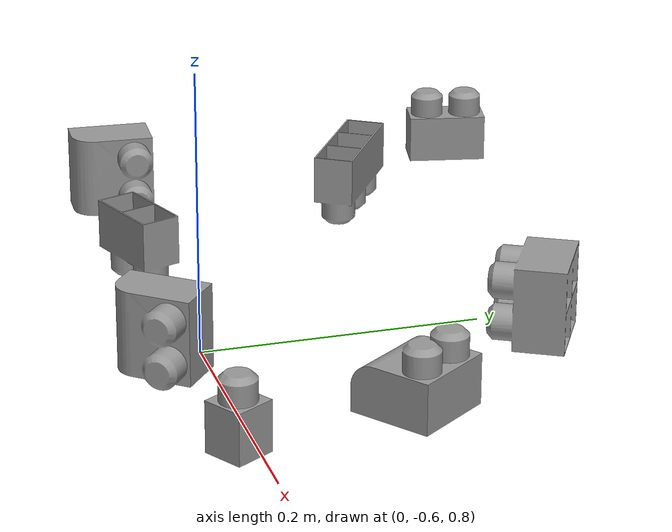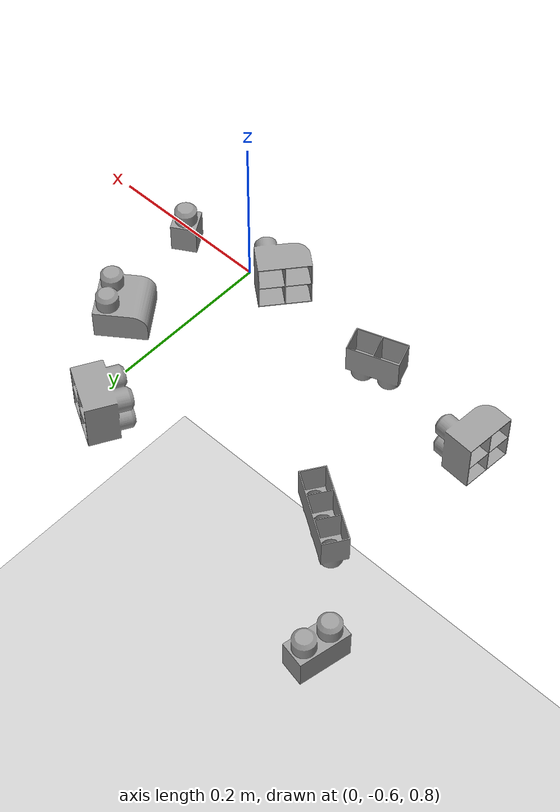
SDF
<sdf version="1.7">
 <world name="base">
  <plugin name="ros_link_attacher_plugin" filename="libgazebo_ros_link_attacher.so"/>
  <gravity>0 0 -9.81</gravity>
  <physics name="default_physics" default="0" type="ode">
   <max_step_size>0.001</max_step_size>
   <real_time_factor>1</real_time_factor>
   <real_time_update_rate>1000</real_time_update_rate>
  </physics>
  <scene><ambient>0.4 0.4 0.4 1</ambient><background>0.7 0.7 0.7 1</background><shadows>1</shadows></scene>
  <light name="sun" type="directional">
   <cast_shadows>0</cast_shadows>
   <pose>0 0 10 0 -0 0</pose>
   <diffuse>0.8 0.8 0.8 1</diffuse>
   <specular>0.2 0.2 0.2 1</specular>
   <attenuation>
    <range>1000</range>
    <constant>0.9</constant>
    <linear>0.01</linear>
    <quadratic>0.001</quadratic>
   </attenuation>
   <direction>-0.5 0.1 -0.9</direction>
   <spot><inner_angle>0</inner_angle><outer_angle>0</outer_angle><falloff>0</falloff></spot>
  </light>
  <model name="ground_plane">
   <static>1</static>
   <link name="link">
    <collision name="collision">
     <geometry><plane><normal>0 0 1</normal><size>100 100</size></plane></geometry>
     <surface>
      <contact><collide_bitmask>65535</collide_bitmask></contact>
      <friction><ode><mu>100</mu><mu2>50</mu2></ode></friction>
     </surface>
    </collision>
    <visual name="visual">
     <cast_shadows>0</cast_shadows>
     <geometry><plane><normal>0 0 1</normal><size>100 100</size></plane></geometry>
     <material>
      <script><uri>file://media/materials/scripts/gazebo.material</uri><name>Gazebo/Grey</name></script>
     </material>
    </visual>
   </link>
  </model>
  <model name="lego_X2-Y2-Z2-FILLET">
   <link name="link">
    <inertial>
     <pose>5.3e-05 0.003572 -0.002006 0 -0 0</pose>
     <mass>0.0223517</mass>
     <inertia>
      <ixx>1.43889e-05</ixx>
      <ixy>2.27232e-10</ixy>
      <ixz>-2.04669e-08</ixz>
      <iyy>1.51725e-05</iyy>
      <iyz>-1.62924e-06</iyz>
      <izz>1.8931e-05</izz>
     </inertia>
    </inertial>
    <collision name="collision">
     <geometry>
      <mesh><scale>1 1 1</scale><uri>model://lego_X2-Y2-Z2-FILLET/meshes/X2-Y2-Z2-FILLET.stl</uri></mesh>
     </geometry>
     <surface>
      <contact><ode><max_vel>0.01</max_vel><min_depth>0</min_depth><mu>0.1</mu><mu2>0.1</mu2></ode></contact>
      <bounce><restitution_coefficient>0</restitution_coefficient><threshold>1e+06</threshold></bounce>
     </surface>
    </collision>
    <visual name="visual">
     <geometry>
      <mesh><scale>1 1 1</scale><uri>model://lego_X2-Y2-Z2-FILLET/meshes/X2-Y2-Z2-FILLET.stl</uri></mesh>
     </geometry>
     <material>
      <script><uri>file://media/materials/scripts/gazebo.material</uri><name>Gazebo/Grey</name></script>
      <shader type="vertex"><normal_map>__default__</normal_map></shader>
      <ambient>0.3 0.3 0.3 1</ambient>
      <diffuse>0.7 0.7 0.7 1</diffuse>
      <specular>0.01 0.01 0.01 1</specular>
      <emissive>0 0 0 1</emissive>
     </material>
    </visual>
   </link>
   <pose>0.073666 -0.469193 0.803498 -6.6e-05 5.1e-05 -0.937567</pose>
  </model>
  <model name="lego_X2-Y2-Z2-FILLET_0">
   <link name="link">
    <inertial>
     <pose>5.3e-05 0.003572 -0.002006 0 -0 0</pose>
     <mass>0.0223517</mass>
     <inertia>
      <ixx>1.43889e-05</ixx>
      <ixy>2.27232e-10</ixy>
      <ixz>-2.04669e-08</ixz>
      <iyy>1.51725e-05</iyy>
      <iyz>-1.62924e-06</iyz>
      <izz>1.8931e-05</izz>
     </inertia>
    </inertial>
    <collision name="collision">
     <geometry>
      <mesh><scale>1 1 1</scale><uri>model://lego_X2-Y2-Z2-FILLET/meshes/X2-Y2-Z2-FILLET.stl</uri></mesh>
     </geometry>
     <surface>
      <contact><ode><max_vel>0.01</max_vel><min_depth>0</min_depth><mu>0.1</mu><mu2>0.1</mu2></ode></contact>
      <bounce><restitution_coefficient>0</restitution_coefficient><threshold>1e+06</threshold></bounce>
     </surface>
    </collision>
    <visual name="visual">
     <geometry>
      <mesh><scale>1 1 1</scale><uri>model://lego_X2-Y2-Z2-FILLET/meshes/X2-Y2-Z2-FILLET.stl</uri></mesh>
     </geometry>
     <material>
      <script><uri>file://media/materials/scripts/gazebo.material</uri><name>Gazebo/Grey</name></script>
      <shader type="vertex"><normal_map>__default__</normal_map></shader>
      <ambient>0.3 0.3 0.3 1</ambient>
      <diffuse>0.7 0.7 0.7 1</diffuse>
      <specular>0.01 0.01 0.01 1</specular>
      <emissive>0 0 0 1</emissive>
     </material>
    </visual>
   </link>
   <pose>-0.339308 -0.589191 0.8065 2.83889 1.57046 2.77699</pose>
  </model>
  <model name="lego_X1-Y1-Z2_0">
   <link name="link">
    <inertial>
     <pose>2e-06 -0 -0.000475 0 -0 0</pose>
     <mass>0.00802771</mass>
     <inertia>
      <ixx>3.14179e-06</ixx>
      <ixy>-2.69251e-10</ixy>
      <ixz>-4.52438e-10</ixz>
      <iyy>3.14364e-06</iyy>
      <iyz>3.14783e-10</iyz>
      <izz>1.98462e-06</izz>
     </inertia>
    </inertial>
    <collision name="collision">
     <geometry><mesh><scale>1 1 1</scale><uri>model://lego_X1-Y1-Z2/meshes/X1-Y1-Z2.stl</uri></mesh></geometry>
     <surface>
      <contact><ode><max_vel>0.01</max_vel><min_depth>0</min_depth><mu>0.1</mu><mu2>0.1</mu2></ode></contact>
      <bounce><restitution_coefficient>0</restitution_coefficient><threshold>1e+06</threshold></bounce>
     </surface>
    </collision>
    <visual name="visual">
     <geometry><mesh><scale>1 1 1</scale><uri>model://lego_X1-Y1-Z2/meshes/X1-Y1-Z2.stl</uri></mesh></geometry>
     <material>
      <script><uri>file://media/materials/scripts/gazebo.material</uri><name>Gazebo/Grey</name></script>
      <shader type="vertex"><normal_map>__default__</normal_map></shader>
      <ambient>0.3 0.3 0.3 1</ambient>
      <diffuse>0.7 0.7 0.7 1</diffuse>
      <specular>0.01 0.01 0.01 1</specular>
      <emissive>0 0 0 1</emissive>
     </material>
    </visual>
   </link>
   <pose>0.104386 -0.600333 0.803499 1.4e-05 -5.1e-05 0.542217</pose>
  </model>
  <model name="lego_X1-Y2-Z2">
   <link name="link">
    <inertial>
     <pose>1e-06 7e-06 0.000398 0 -0 0</pose>
     <mass>0.0146868</mass>
     <inertia>
      <ixx>1.00644e-05</ixx>
      <ixy>-2.20574e-10</ixy>
      <ixz>6.78532e-11</ixz>
      <iyy>5.89081e-06</iyy>
      <iyz>-2.30188e-09</iyz>
      <izz>7.98702e-06</izz>
     </inertia>
    </inertial>
    <collision name="collision">
     <geometry><mesh><scale>1 1 1</scale><uri>model://lego_X1-Y2-Z2/meshes/X1-Y2-Z2.stl</uri></mesh></geometry>
     <surface>
      <contact><ode><max_vel>0.01</max_vel><min_depth>0</min_depth><mu>0.1</mu><mu2>0.1</mu2></ode></contact>
      <bounce><restitution_coefficient>0</restitution_coefficient><threshold>1e+06</threshold></bounce>
     </surface>
    </collision>
    <visual name="visual">
     <geometry><mesh><scale>1 1 1</scale><uri>model://lego_X1-Y2-Z2/meshes/X1-Y2-Z2.stl</uri></mesh></geometry>
     <material>
      <script><uri>file://media/materials/scripts/gazebo.material</uri><name>Gazebo/Grey</name></script>
      <shader type="vertex"><normal_map>__default__</normal_map></shader>
      <ambient>0.3 0.3 0.3 1</ambient>
      <diffuse>0.7 0.7 0.7 1</diffuse>
      <specular>0.01 0.01 0.01 1</specular>
      <emissive>0 0 0 1</emissive>
     </material>
    </visual>
   </link>
   <pose>-0.390552 -0.289449 0.803505 2e-06 -1.9e-05 2.94301</pose>
  </model>
  <model name="lego_X2-Y2-Z2_0">
   <link name="link">
    <inertial>
     <pose>4.1e-05 4e-06 0.001614 0 -0 0</pose>
     <mass>0.026561</mass>
     <inertia>
      <ixx>1.86213e-05</ixx>
      <ixy>-8.50865e-10</ixy>
      <ixz>-2.27639e-08</ixz>
      <iyy>1.86146e-05</iyy>
      <iyz>-2.7788e-09</iyz>
      <izz>2.26537e-05</izz>
     </inertia>
    </inertial>
    <collision name="collision">
     <geometry><mesh><scale>1 1 1</scale><uri>model://lego_X2-Y2-Z2/meshes/X2-Y2-Z2.stl</uri></mesh></geometry>
     <surface>
      <contact><ode><max_vel>0.01</max_vel><min_depth>0</min_depth><mu>0.1</mu><mu2>0.1</mu2></ode></contact>
      <bounce><restitution_coefficient>0</restitution_coefficient><threshold>1e+06</threshold></bounce>
     </surface>
    </collision>
    <visual name="visual">
     <geometry><mesh><scale>1 1 1</scale><uri>model://lego_X2-Y2-Z2/meshes/X2-Y2-Z2.stl</uri></mesh></geometry>
     <material>
      <script><uri>file://media/materials/scripts/gazebo.material</uri><name>Gazebo/Grey</name></script>
      <shader type="vertex"><normal_map>__default__</normal_map></shader>
      <ambient>0.3 0.3 0.3 1</ambient>
      <diffuse>0.7 0.7 0.7 1</diffuse>
      <specular>0.01 0.01 0.01 1</specular>
      <emissive>0 0 0 1</emissive>
     </material>
    </visual>
   </link>
   <pose>-0.015751 -0.35277 0.80651 -1.57111 -0.000219 2.63448</pose>
  </model>
  <model name="lego_X2-Y2-Z2-FILLET_1">
   <link name="link">
    <inertial>
     <pose>5.3e-05 0.003572 -0.002006 0 -0 0</pose>
     <mass>0.0223517</mass>
     <inertia>
      <ixx>1.43889e-05</ixx>
      <ixy>2.27232e-10</ixy>
      <ixz>-2.04669e-08</ixz>
      <iyy>1.51725e-05</iyy>
      <iyz>-1.62924e-06</iyz>
      <izz>1.8931e-05</izz>
     </inertia>
    </inertial>
    <collision name="collision">
     <geometry>
      <mesh><scale>1 1 1</scale><uri>model://lego_X2-Y2-Z2-FILLET/meshes/X2-Y2-Z2-FILLET.stl</uri></mesh>
     </geometry>
     <surface>
      <contact><ode><max_vel>0.01</max_vel><min_depth>0</min_depth><mu>0.1</mu><mu2>0.1</mu2></ode></contact>
      <bounce><restitution_coefficient>0</restitution_coefficient><threshold>1e+06</threshold></bounce>
     </surface>
    </collision>
    <visual name="visual">
     <geometry>
      <mesh><scale>1 1 1</scale><uri>model://lego_X2-Y2-Z2-FILLET/meshes/X2-Y2-Z2-FILLET.stl</uri></mesh>
     </geometry>
     <material>
      <script><uri>file://media/materials/scripts/gazebo.material</uri><name>Gazebo/Grey</name></script>
      <shader type="vertex"><normal_map>__default__</normal_map></shader>
      <ambient>0.3 0.3 0.3 1</ambient>
      <diffuse>0.7 0.7 0.7 1</diffuse>
      <specular>0.01 0.01 0.01 1</specular>
      <emissive>0 0 0 1</emissive>
     </material>
    </visual>
   </link>
   <pose>-0.025698 -0.626616 0.806501 3.06772 1.57066 2.38667</pose>
  </model>
  <model name="lego_X1-Y2-Z2_0">
   <link name="link">
    <inertial>
     <pose>1e-06 7e-06 0.000398 0 -0 0</pose>
     <mass>0.0146868</mass>
     <inertia>
      <ixx>1.00644e-05</ixx>
      <ixy>-2.20574e-10</ixy>
      <ixz>6.78532e-11</ixz>
      <iyy>5.89081e-06</iyy>
      <iyz>-2.30188e-09</iyz>
      <izz>7.98702e-06</izz>
     </inertia>
    </inertial>
    <collision name="collision">
     <geometry><mesh><scale>1 1 1</scale><uri>model://lego_X1-Y2-Z2/meshes/X1-Y2-Z2.stl</uri></mesh></geometry>
     <surface>
      <contact><ode><max_vel>0.01</max_vel><min_depth>0</min_depth><mu>0.1</mu><mu2>0.1</mu2></ode></contact>
      <bounce><restitution_coefficient>0</restitution_coefficient><threshold>1e+06</threshold></bounce>
     </surface>
    </collision>
    <visual name="visual">
     <geometry><mesh><scale>1 1 1</scale><uri>model://lego_X1-Y2-Z2/meshes/X1-Y2-Z2.stl</uri></mesh></geometry>
     <material>
      <script><uri>file://media/materials/scripts/gazebo.material</uri><name>Gazebo/Grey</name></script>
      <shader type="vertex"><normal_map>__default__</normal_map></shader>
      <ambient>0.3 0.3 0.3 1</ambient>
      <diffuse>0.7 0.7 0.7 1</diffuse>
      <specular>0.01 0.01 0.01 1</specular>
      <emissive>0 0 0 1</emissive>
     </material>
    </visual>
   </link>
   <pose>-0.19625 -0.599578 0.803499 3.14152 -1.1e-05 1.91489</pose>
  </model>
  <model name="lego_X1-Y3-Z2">
   <link name="link">
    <inertial>
     <pose>1e-06 1e-06 0.000653 0 -0 0</pose>
     <mass>0.0212844</mass>
     <inertia>
      <ixx>2.43994e-05</ixx>
      <ixy>-2.47623e-11</ixy>
      <ixz>-4.81047e-10</ixz>
      <iyy>8.5861e-06</iyy>
      <iyz>-7.44265e-10</iyz>
      <izz>2.14469e-05</izz>
     </inertia>
    </inertial>
    <collision name="collision">
     <geometry><mesh><scale>1 1 1</scale><uri>model://lego_X1-Y3-Z2/meshes/X1-Y3-Z2.stl</uri></mesh></geometry>
     <surface>
      <contact><ode><max_vel>0.01</max_vel><min_depth>0</min_depth><mu>0.1</mu><mu2>0.1</mu2></ode></contact>
      <bounce><restitution_coefficient>0</restitution_coefficient><threshold>1e+06</threshold></bounce>
     </surface>
    </collision>
    <visual name="visual">
     <geometry><mesh><scale>1 1 1</scale><uri>model://lego_X1-Y3-Z2/meshes/X1-Y3-Z2.stl</uri></mesh></geometry>
     <material>
      <script><uri>file://media/materials/scripts/gazebo.material</uri><name>Gazebo/Grey</name></script>
      <shader type="vertex"><normal_map>__default__</normal_map></shader>
      <ambient>0.3 0.3 0.3 1</ambient>
      <diffuse>0.7 0.7 0.7 1</diffuse>
      <specular>0.01 0.01 0.01 1</specular>
      <emissive>0 0 0 1</emissive>
     </material>
    </visual>
   </link>
   <pose>-0.294998 -0.403902 0.8035 -3.14159 4.8e-05 -2.14297</pose>
  </model>
 </world>
</sdf>
